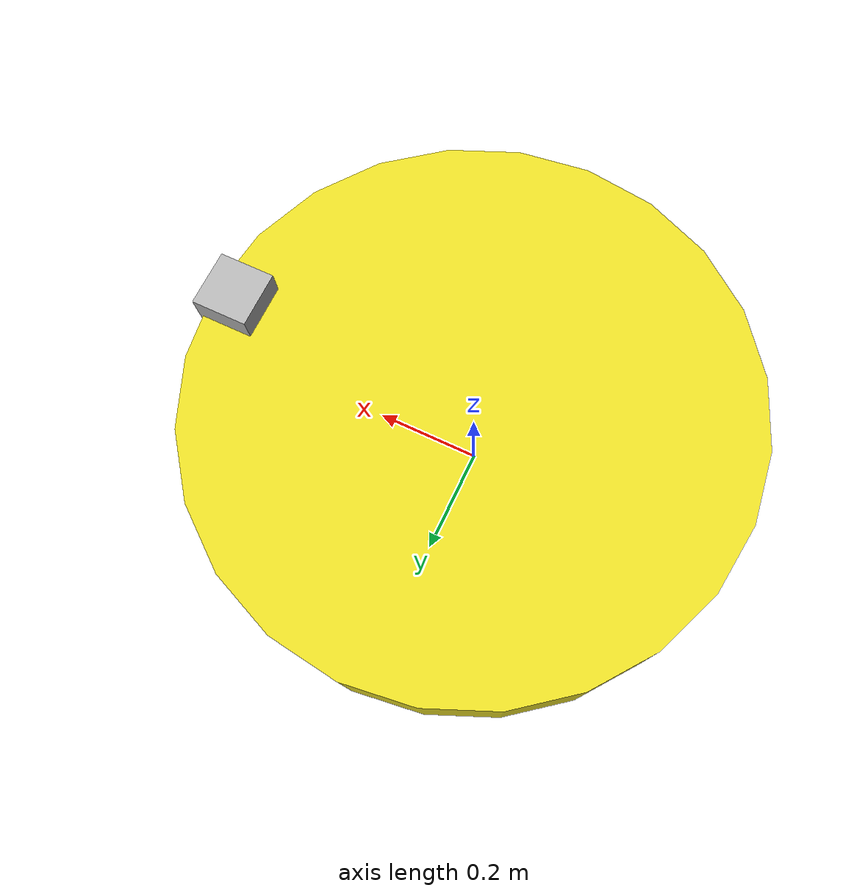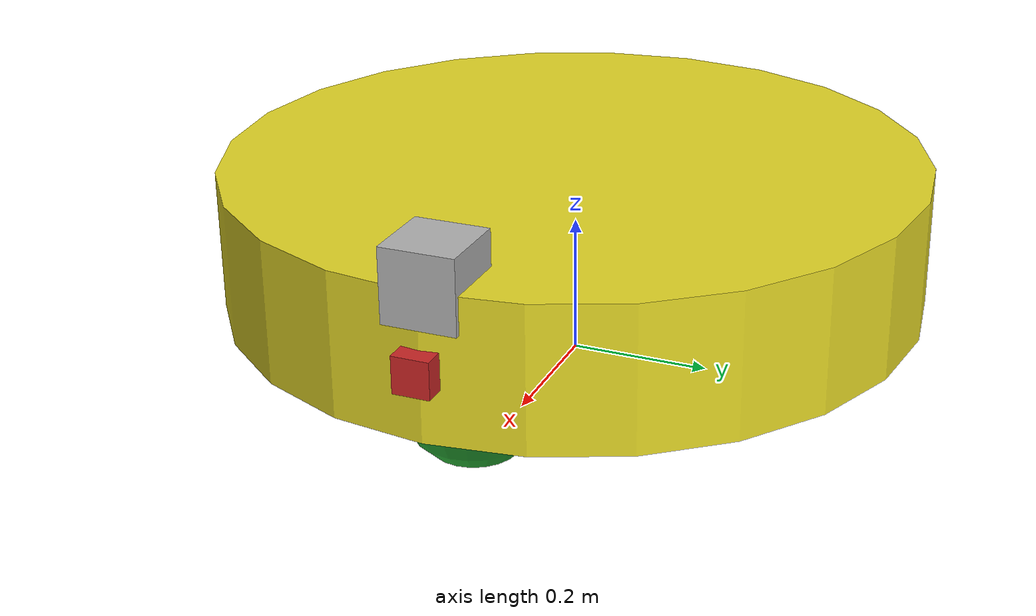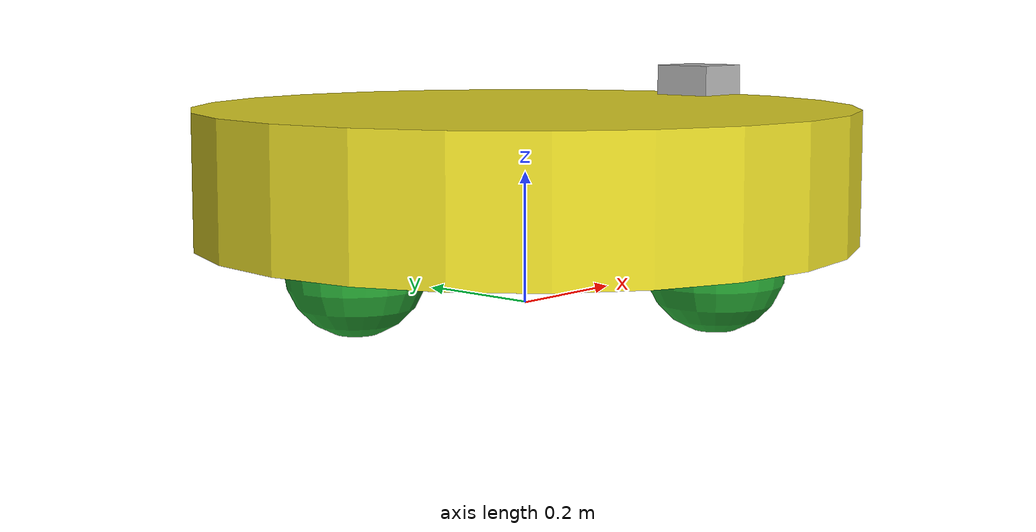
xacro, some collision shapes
<?xml version="1.0" ?>

<robot name="rumba_like_robot" xmlns:xacro="http://wwww.ros.org/wiki/xacro">

    <link name="robot_footprint">

    </link>

    <xacro:include filename="$(find rumba_like_robot)/urdf/robot_rumba.gazebo" />

    <joint name="robot_footprint_joint" type="fixed">
        <origin xyz="0 0 0.0" rpy="0 0 0"/>
        <parent link="robot_footprint"/>
        <child link="chassis"/>

    </joint>
    <!-- chassis aka link_0 -->
    <link name="chassis">
        <pose>0.0 0.0 0.0 0.0 0.0 0.0 </pose>
        <inertial>
            <mass value="15.0"/>
            <origin xyz="0.0 0.0 0.2" rpy="0 0 0" />
            <inertia ixx="0.1" ixy="0.0" ixz="0.0"
                     iyy="0.1" iyz="0.0"
                     izz="0.1" />
        </inertial>

        <collision name="collision">
            <origin xyz="0.0 0.0 0.2" rpy="0 0 0"/>
            <geometry>
                <cylinder radius="0.5" length="0.2"/>
            </geometry>

        </collision>

        <visual name="chassis_visual">
            <origin xyz="0.0 0.0 0.2" rpy="0.0 0.0 0.0"/>
            <geometry>
                <cylinder radius="0.5" length="0.2"/>
            </geometry>

        </visual>

    </link>

    <link name="right_wheel">
        <inertial>
            <mass value="2.5"/>
            <origin xyz="0.0 0.0 0.0" rpy="0.0 0 0"/>
            <geometry>
                <sphere radius="0.1"/>
            </geometry>
           <inertia ixx="0.1" ixy="0.0" ixz="0.0" iyy="0.1" iyz="0.0" izz="0.1"/>

        </inertial>

        <collision>
            <origin xyz="0.0 0.0 0.0" rpy="0.0 0.0 0.0"/>
            <geometry>
                <sphere radius="0.1"/>
            </geometry>

        </collision>

        <visual name="right_wheel_visual">
            <origin xyz="0.0 0.0 0.0" rpy="0.0 0.0 0.0"/>
            <geometry>
                <sphere radius="0.1"/>
            </geometry>

        </visual>
    </link>

    <link name="left_wheel">
        <inertial>
            <mass value="2.5"/>
            <origin xyz="0.0 0.0 0.0" rpy="0.0 0.0 0.0"/>
            <geometry>
                <sphere radius="0.1"/>
            </geometry>
           <inertia ixx="0.1" ixy="0.0" ixz="0.0" iyy="0.1" iyz="0.0" izz="0.1"/>
        </inertial>

        <collision>
            <origin xyz="0.0 0.0 0.0" rpy="0.0 0.0 0.0"/>
            <geometry>
                <sphere radius="0.1"/>
            </geometry>
        </collision>

        <visual name="left_wheel_visual">
            <origin xyz="0.0 0.0 0.0" rpy="0.0 0.0 0.0"/>
            <geometry>
                <sphere radius="0.1"/>
            </geometry>

        </visual>

    </link>

    <link name="back_wheel">
        <inertial>
            <mass value="2.5"/>
            <origin xyz="0.0 0.0 0.0" rpy="0.0 0.0 0.0"/>
            <geometry>
                <sphere radius="0.1"/>
            </geometry>
           <inertia ixx="0.1" ixy="0.0" ixz="0.0" iyy="0.1" iyz="0.0" izz="0.1"/>
        </inertial>

        <collision>
            <origin xyz="0.0 0.0 0.0" rpy="0.0 0.0 0.0"/>
            <geometry>
                <sphere radius="0.1"/>
            </geometry>
        </collision>

        <visual name="back_wheel_visual">
            <origin xyz="0.0 0.0 0.0" rpy="0.0 0.0 0.0"/>
            <geometry>
                <sphere radius="0.1"/>
            </geometry>

        </visual>

    </link>

    <link name="front_wheel">
        <inertial>
            <mass value="2.5"/>
            <origin xyz="0.0 0.0 0.0" rpy="0.0 0.0 0.0"/>
            <geometry>
                <sphere radius="0.1"/>
            </geometry>
           <inertia ixx="0.1" ixy="0.0" ixz="0.0" iyy="0.1" iyz="0.0" izz="0.1"/>
        </inertial>

        <collision>
            <origin xyz="0.0 0.0 0.0" rpy="0.0 0.0 0.0"/>
            <geometry>
                <sphere radius="0.1"/>
            </geometry>
        </collision>

        <visual name="front_wheel_visual">
            <origin xyz="0.0 0.0 0.0" rpy="0.0 0.0 0.0"/>
            <geometry>
                <sphere radius="0.1"/>
            </geometry>

        </visual>

    </link>

    <!--  left wheel spherical joint -->
    <joint name="left_wheel_hinge" type="continuous">
        <origin xyz="0.0 0.35 0.1" rpy="0.0 0.0 0.0"/>
        <parent link="chassis"/>
        <child link="left_wheel"/>
        <axis xyz="0.0 1.0 0.0" rpy="0.0 0.0 0.0"/>
        <limit effort="10000" velocity="1000"/>/
        <dynamics damping="1.0" friction="1.0"/>
    </joint>

    <!--  Right wheel spherical joint -->
    <joint name="right_wheel_hinge" type="continuous">
        <origin xyz="0.0 -0.35 0.1" rpy="0.0 0.0 0.0"/>
        <parent link="chassis"/>
        <child link="right_wheel"/>
        <axis xyz="0.0 1.0 1.0" rpy="0.0 0.0 0.0"/>
        <limit effort="10000" velocity="1000"/>
        <dynamics damping="1.0" friction="1.0" />

    </joint>
    <!--  back wheel spherical joint -->
    <joint name="back_wheel_hinge" type="continuous">
        <origin xyz="-0.35 0.0 0.1" rpy="0.0 0.0 0.0"/>
        <parent link="chassis"/>
        <child link="back_wheel"/>
        <axis xyz="0.0 1.0 1.0" rpy="0.0 0.0 0.0"/>
        <limit effort="10000" velocity="1000"/>
        <dynamics damping="1.0" friction="1.0"/>

    </joint>

    <!--  front wheel spherical joint -->
    <joint name="front_wheel_hinge" type="continuous">
        <origin xyz="0.35 0.0 0.1" rpy="0.0 0.0 0.0"/>
        <parent link="chassis"/>
        <child link="front_wheel"/>
        <axis xyz="0.0 1.0 0.0" rpy="0.0 0.0 0.0"/>
        <limit effort="10000" velocity="1000"/>
        <dynamics damping="1.0" friction="1.0" />

    </joint>

    <link name="camera">
        <inertial>
            <mass value="0.2"/>
            <origin xyz="0.0 0.0 0.0" rpy="0.0 0.0 0.0"/>
            <geometry>
                <box size="0.05 0.05 0.05" />
                <box_inertia m="0.1" x="0.05" y="0.05" z="0.05"/>
            </geometry>
            <inertia ixx="1e-6" ixy="0.0" ixz="0.0" iyy="1e-6" iyz="0.0" izz="1e-6"/>
        </inertial>
        <collision>
            <origin xyz="0.0 0.0 0.0" rpy="0.0 0.0 0.0"/>
            <geometry>
                <box size="0.05 0.05 0.05"/>
                <box_inertia m="0.1" x="0.05" y="0.05" z="0.05"/>
            </geometry>

        </collision>

        <visual name="camera_visual">
            <origin xyz="0.0 0.0 0.0" rpy="0.0 0.0 0.0"/>
            <geometry>
                <box size="0.05 0.05 0.05"/>
                <box_inertia m="0.1" x="0.05" y="0.05" z="0.05"/>
            </geometry>

        </visual>

    </link>

    <joint name="camera_joint" type="fixed">
        <axis xyz="0.0 1 0.0"/>
        <origin xyz="0.5 0.0 0.2" rpy="0.0 0.0 0.0"/>
        <parent link="chassis"/>
        <child link="camera"/>

    </joint>

    <link name="hokuyo">
        <inertial>
            <mass value="1e-5"/>
            <origin xyz="0.0 0.0 0.0" rpy="0.0 0.0 0.0"/>
            <geometry>
                <box size="0.1 0.1 0.1"/>
            </geometry>
            <inertia ixx="1e-6" ixy="0.0" ixz="0.0" iyy="1e-6" iyz="0.0" izz="1e-6"/>
        </inertial>

        <collision>
            <origin xyz="0.0 0.0 0.0" rpy="0.0 0.0 0.0"/>
            <geometry>
                <box size="0.1 0.1 0.1"/>
            </geometry>
        </collision>

        <visual name="hokuyo_lidar_visual">
            <origin xyz="0.0 0.0 0.0" rpy="0.0 0.0 0.0"/>
            <geometry>
                <mesh filename="package://rumba_like_robot/meshes/hokuyo.dae"/>
            </geometry>

        </visual>

    </link>

    <joint name="hokuyo_lidar_joint" type="fixed">
        <axis xyz="0.0 1.0 0.0"/>
        <origin xyz="0.45 0.0 0.3" rpy="0.0 0.0 0.0"/>
        <parent link="chassis"/>
        <child link="hokuyo"/>

    </joint>

    <gazebo reference="left_wheel">
        <material>Gazebo/Green</material>
    </gazebo>

    <gazebo reference="right_wheel">
        <material>Gazebo/Green</material>
    </gazebo>
    <gazebo reference="front_wheel">
        <material>Gazebo/Green</material>
    </gazebo>

    <gazebo reference="back_wheel">
        <material>Gazebo/Green</material>
    </gazebo>

    <gazebo reference="chassis">
        <material>Gazebo/Yellow</material>
    </gazebo>

    <gazebo reference="camera">
        <material>Gazebo/Red</material>
    </gazebo>

</robot>
